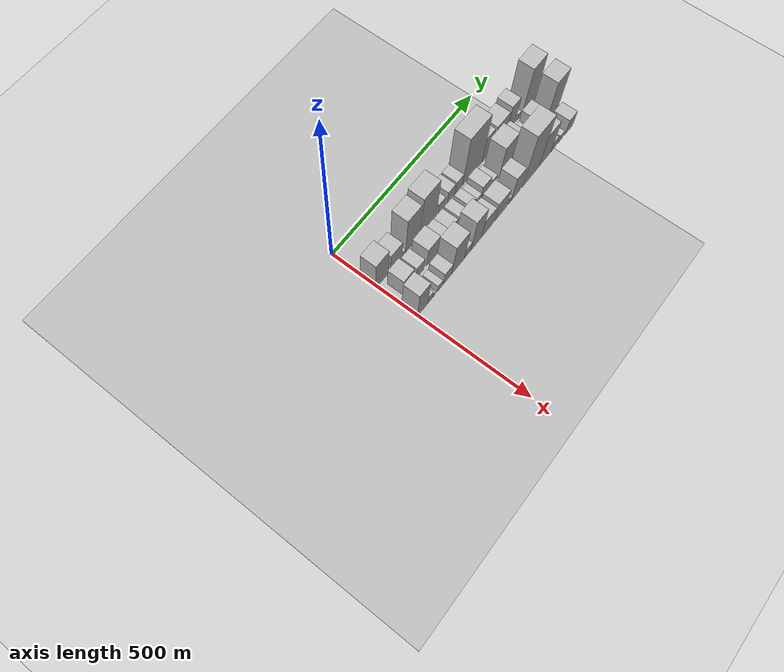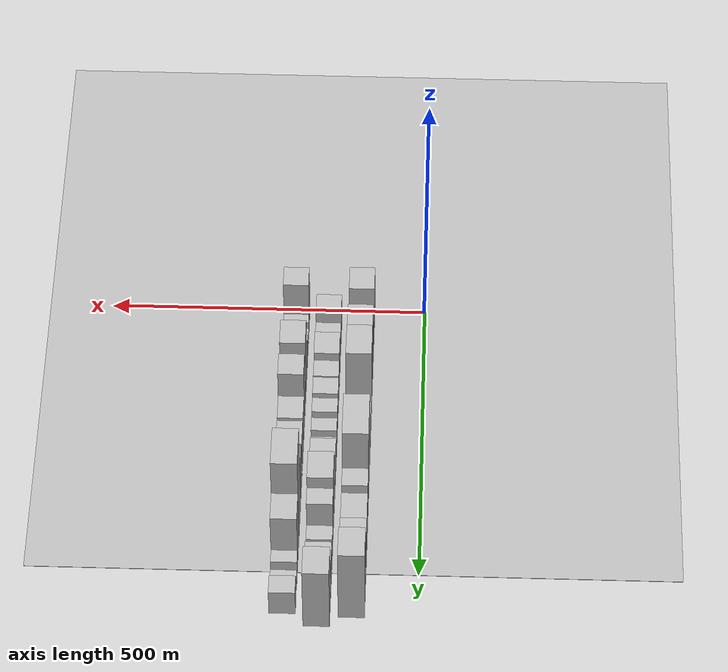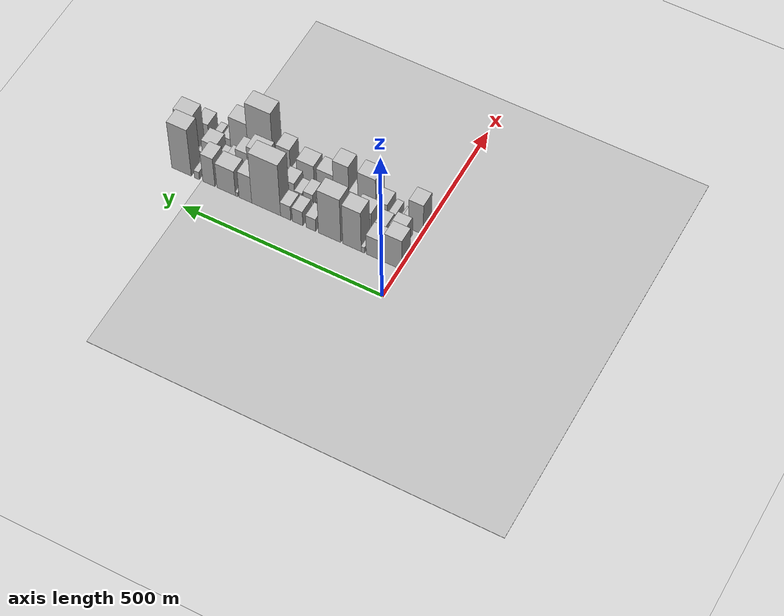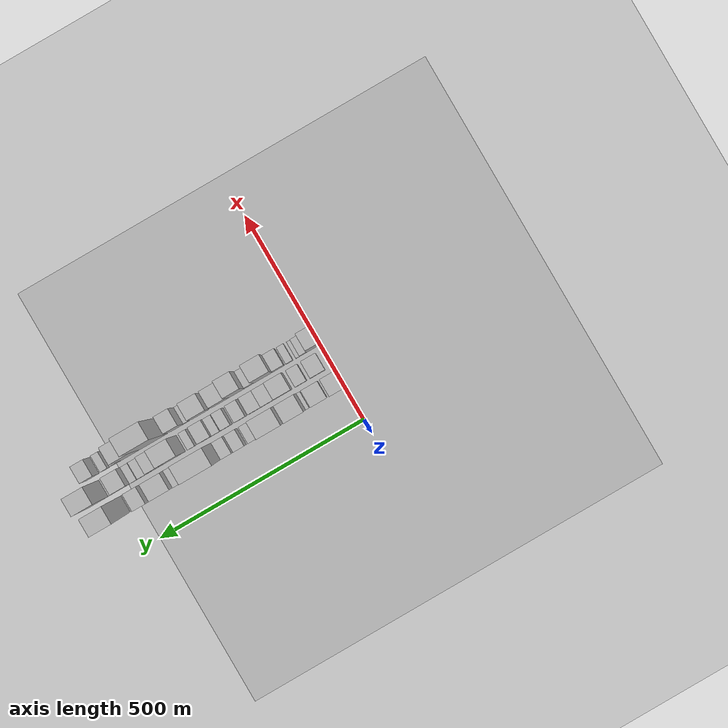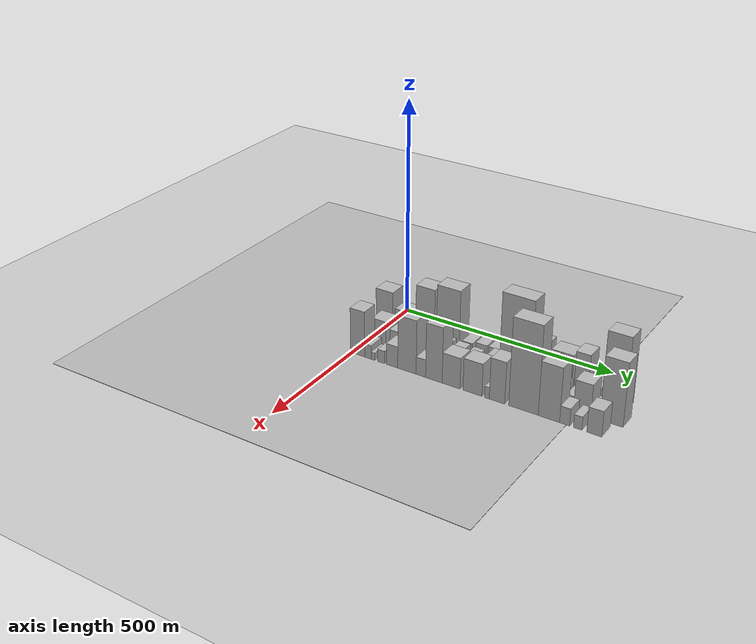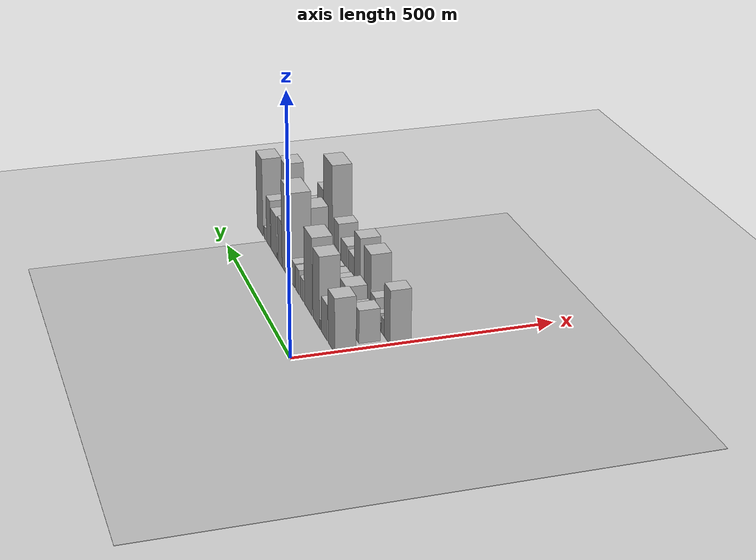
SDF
<sdf version="1.6">
 <world name="default">
  <include><name>ground_plane_1</name><uri>model://HANNAS_ground_plane</uri></include>
  <include>
   <name>ground_plane_2</name>
   <uri>model://HANNAS_ground_plane</uri>
   <pose>100 0 0  0 0 0</pose>
  </include>
  <model name="building_19">
   <static>1</static>
   <pose>100.0000 15.9065 0 0.000000 0.000000 0.000000</pose>
   <link name="link">
    <pose>0 0 54.00 0 0 0</pose>
    <collision name="collision"><geometry><box><size>40.0000 42.9172 108.0000</size></box></geometry></collision>
    <visual name="visual">
     <cast_shadows>0</cast_shadows>
     <geometry><box><size>40.0000 42.9172 108.0000</size></box></geometry>
     <material>
      <script>
       <uri>model://HANNAS_wall/materials/scripts</uri>
       <uri>model://HANNAS_wall/materials/textures</uri>
       <name>vrc/HANNAS_wall</name>
      </script>
     </material>
    </visual>
   </link>
  </model>
  <model name="building_20">
   <static>1</static>
   <pose>100.0000 63.1172 0 0.000000 0.000000 0.000000</pose>
   <link name="link">
    <pose>0 0 36.00 0 0 0</pose>
    <collision name="collision"><geometry><box><size>40.0000 39.5042 72.0000</size></box></geometry></collision>
    <visual name="visual">
     <cast_shadows>0</cast_shadows>
     <geometry><box><size>40.0000 39.5042 72.0000</size></box></geometry>
     <material>
      <script>
       <uri>model://HANNAS_wall/materials/scripts</uri>
       <uri>model://HANNAS_wall/materials/textures</uri>
       <name>vrc/HANNAS_wall</name>
      </script>
     </material>
    </visual>
   </link>
  </model>
  <model name="building_21">
   <static>1</static>
   <pose>100.0000 91.1646 0 0.000000 0.000000 0.000000</pose>
   <link name="link">
    <pose>0 0 10.50 0 0 0</pose>
    <collision name="collision"><geometry><box><size>40.0000 8.5904 21.0000</size></box></geometry></collision>
    <visual name="visual">
     <cast_shadows>0</cast_shadows>
     <geometry><box><size>40.0000 8.5904 21.0000</size></box></geometry>
     <material>
      <script>
       <uri>model://HANNAS_wall/materials/scripts</uri>
       <uri>model://HANNAS_wall/materials/textures</uri>
       <name>vrc/HANNAS_wall</name>
      </script>
     </material>
    </visual>
   </link>
  </model>
  <model name="building_22">
   <static>1</static>
   <pose>100.0000 118.4998 0 0.000000 0.000000 0.000000</pose>
   <link name="link">
    <pose>0 0 72.00 0 0 0</pose>
    <collision name="collision"><geometry><box><size>40.0000 46.0801 144.0000</size></box></geometry></collision>
    <visual name="visual">
     <cast_shadows>0</cast_shadows>
     <geometry><box><size>40.0000 46.0801 144.0000</size></box></geometry>
     <material>
      <script>
       <uri>model://HANNAS_wall/materials/scripts</uri>
       <uri>model://HANNAS_wall/materials/textures</uri>
       <name>vrc/HANNAS_wall</name>
      </script>
     </material>
    </visual>
   </link>
  </model>
  <model name="building_23">
   <static>1</static>
   <pose>100.0000 174.3780 0 0.000000 0.000000 0.000000</pose>
   <link name="link">
    <pose>0 0 79.50 0 0 0</pose>
    <collision name="collision"><geometry><box><size>40.0000 55.6762 159.0000</size></box></geometry></collision>
    <visual name="visual">
     <cast_shadows>0</cast_shadows>
     <geometry><box><size>40.0000 55.6762 159.0000</size></box></geometry>
     <material>
      <script>
       <uri>model://HANNAS_wall/materials/scripts</uri>
       <uri>model://HANNAS_wall/materials/textures</uri>
       <name>vrc/HANNAS_wall</name>
      </script>
     </material>
    </visual>
   </link>
  </model>
  <model name="building_24">
   <static>1</static>
   <pose>100.0000 221.4024 0 0.000000 0.000000 0.000000</pose>
   <link name="link">
    <pose>0 0 22.50 0 0 0</pose>
    <collision name="collision"><geometry><box><size>40.0000 24.3726 45.0000</size></box></geometry></collision>
    <visual name="visual">
     <cast_shadows>0</cast_shadows>
     <geometry><box><size>40.0000 24.3726 45.0000</size></box></geometry>
     <material>
      <script>
       <uri>model://HANNAS_wall/materials/scripts</uri>
       <uri>model://HANNAS_wall/materials/textures</uri>
       <name>vrc/HANNAS_wall</name>
      </script>
     </material>
    </visual>
   </link>
  </model>
  <model name="building_25">
   <static>1</static>
   <pose>100.0000 254.8437 0 0.000000 0.000000 0.000000</pose>
   <link name="link">
    <pose>0 0 25.50 0 0 0</pose>
    <collision name="collision"><geometry><box><size>40.0000 26.5101 51.0000</size></box></geometry></collision>
    <visual name="visual">
     <cast_shadows>0</cast_shadows>
     <geometry><box><size>40.0000 26.5101 51.0000</size></box></geometry>
     <material>
      <script>
       <uri>model://HANNAS_wall/materials/scripts</uri>
       <uri>model://HANNAS_wall/materials/textures</uri>
       <name>vrc/HANNAS_wall</name>
      </script>
     </material>
    </visual>
   </link>
  </model>
  <model name="building_26">
   <static>1</static>
   <pose>100.0000 285.0551 0 0.000000 0.000000 0.000000</pose>
   <link name="link">
    <pose>0 0 25.50 0 0 0</pose>
    <collision name="collision"><geometry><box><size>40.0000 25.9128 51.0000</size></box></geometry></collision>
    <visual name="visual">
     <cast_shadows>0</cast_shadows>
     <geometry><box><size>40.0000 25.9128 51.0000</size></box></geometry>
     <material>
      <script>
       <uri>model://HANNAS_wall/materials/scripts</uri>
       <uri>model://HANNAS_wall/materials/textures</uri>
       <name>vrc/HANNAS_wall</name>
      </script>
     </material>
    </visual>
   </link>
  </model>
  <model name="building_27">
   <static>1</static>
   <pose>100.0000 334.7470 0 0.000000 0.000000 0.000000</pose>
   <link name="link">
    <pose>0 0 93.00 0 0 0</pose>
    <collision name="collision"><geometry><box><size>40.0000 73.4709 186.0000</size></box></geometry></collision>
    <visual name="visual">
     <cast_shadows>0</cast_shadows>
     <geometry><box><size>40.0000 73.4709 186.0000</size></box></geometry>
     <material>
      <script>
       <uri>model://HANNAS_wall/materials/scripts</uri>
       <uri>model://HANNAS_wall/materials/textures</uri>
       <name>vrc/HANNAS_wall</name>
      </script>
     </material>
    </visual>
   </link>
  </model>
  <model name="building_28">
   <static>1</static>
   <pose>100.0000 387.5578 0 0.000000 0.000000 0.000000</pose>
   <link name="link">
    <pose>0 0 48.00 0 0 0</pose>
    <collision name="collision"><geometry><box><size>40.0000 32.1508 96.0000</size></box></geometry></collision>
    <visual name="visual">
     <cast_shadows>0</cast_shadows>
     <geometry><box><size>40.0000 32.1508 96.0000</size></box></geometry>
     <material>
      <script>
       <uri>model://HANNAS_wall/materials/scripts</uri>
       <uri>model://HANNAS_wall/materials/textures</uri>
       <name>vrc/HANNAS_wall</name>
      </script>
     </material>
    </visual>
   </link>
  </model>
  <model name="building_29">
   <static>1</static>
   <pose>100.0000 409.8102 0 0.000000 0.000000 0.000000</pose>
   <link name="link">
    <pose>0 0 7.50 0 0 0</pose>
    <collision name="collision"><geometry><box><size>40.0000 6.3538 15.0000</size></box></geometry></collision>
    <visual name="visual">
     <cast_shadows>0</cast_shadows>
     <geometry><box><size>40.0000 6.3538 15.0000</size></box></geometry>
     <material>
      <script>
       <uri>model://HANNAS_wall/materials/scripts</uri>
       <uri>model://HANNAS_wall/materials/textures</uri>
       <name>vrc/HANNAS_wall</name>
      </script>
     </material>
    </visual>
   </link>
  </model>
  <model name="building_30">
   <static>1</static>
   <pose>100.0000 436.9131 0 0.000000 0.000000 0.000000</pose>
   <link name="link">
    <pose>0 0 45.00 0 0 0</pose>
    <collision name="collision"><geometry><box><size>40.0000 47.8520 90.0000</size></box></geometry></collision>
    <visual name="visual">
     <cast_shadows>0</cast_shadows>
     <geometry><box><size>40.0000 47.8520 90.0000</size></box></geometry>
     <material>
      <script>
       <uri>model://HANNAS_wall/materials/scripts</uri>
       <uri>model://HANNAS_wall/materials/textures</uri>
       <name>vrc/HANNAS_wall</name>
      </script>
     </material>
    </visual>
   </link>
  </model>
  <model name="building_31">
   <static>1</static>
   <pose>100.0000 481.4354 0 0.000000 0.000000 0.000000</pose>
   <link name="link">
    <pose>0 0 51.00 0 0 0</pose>
    <collision name="collision"><geometry><box><size>40.0000 31.1927 102.0000</size></box></geometry></collision>
    <visual name="visual">
     <cast_shadows>0</cast_shadows>
     <geometry><box><size>40.0000 31.1927 102.0000</size></box></geometry>
     <material>
      <script>
       <uri>model://HANNAS_wall/materials/scripts</uri>
       <uri>model://HANNAS_wall/materials/textures</uri>
       <name>vrc/HANNAS_wall</name>
      </script>
     </material>
    </visual>
   </link>
  </model>
  <model name="building_32">
   <static>1</static>
   <pose>100.0000 512.4188 0 0.000000 0.000000 0.000000</pose>
   <link name="link">
    <pose>0 0 13.50 0 0 0</pose>
    <collision name="collision"><geometry><box><size>40.0000 12.7741 27.0000</size></box></geometry></collision>
    <visual name="visual">
     <cast_shadows>0</cast_shadows>
     <geometry><box><size>40.0000 12.7741 27.0000</size></box></geometry>
     <material>
      <script>
       <uri>model://HANNAS_wall/materials/scripts</uri>
       <uri>model://HANNAS_wall/materials/textures</uri>
       <name>vrc/HANNAS_wall</name>
      </script>
     </material>
    </visual>
   </link>
  </model>
  <model name="building_33">
   <static>1</static>
   <pose>100.0000 552.2329 0 0.000000 0.000000 0.000000</pose>
   <link name="link">
    <pose>0 0 84.00 0 0 0</pose>
    <collision name="collision"><geometry><box><size>40.0000 50.8540 168.0000</size></box></geometry></collision>
    <visual name="visual">
     <cast_shadows>0</cast_shadows>
     <geometry><box><size>40.0000 50.8540 168.0000</size></box></geometry>
     <material>
      <script>
       <uri>model://HANNAS_wall/materials/scripts</uri>
       <uri>model://HANNAS_wall/materials/textures</uri>
       <name>vrc/HANNAS_wall</name>
      </script>
     </material>
    </visual>
   </link>
  </model>
  <model name="building_54">
   <static>1</static>
   <pose>152.0000 35.4075 0 0.000000 0.000000 0.000000</pose>
   <link name="link">
    <pose>0 0 33.00 0 0 0</pose>
    <collision name="collision"><geometry><box><size>40.0000 35.6717 66.0000</size></box></geometry></collision>
    <visual name="visual">
     <cast_shadows>0</cast_shadows>
     <geometry><box><size>40.0000 35.6717 66.0000</size></box></geometry>
     <material>
      <script>
       <uri>model://HANNAS_wall/materials/scripts</uri>
       <uri>model://HANNAS_wall/materials/textures</uri>
       <name>vrc/HANNAS_wall</name>
      </script>
     </material>
    </visual>
   </link>
  </model>
  <model name="building_55">
   <static>1</static>
   <pose>152.0000 76.0595 0 0.000000 0.000000 0.000000</pose>
   <link name="link">
    <pose>0 0 25.50 0 0 0</pose>
    <collision name="collision"><geometry><box><size>40.0000 27.6321 51.0000</size></box></geometry></collision>
    <visual name="visual">
     <cast_shadows>0</cast_shadows>
     <geometry><box><size>40.0000 27.6321 51.0000</size></box></geometry>
     <material>
      <script>
       <uri>model://HANNAS_wall/materials/scripts</uri>
       <uri>model://HANNAS_wall/materials/textures</uri>
       <name>vrc/HANNAS_wall</name>
      </script>
     </material>
    </visual>
   </link>
  </model>
  <model name="building_56">
   <static>1</static>
   <pose>152.0000 119.8671 0 0.000000 0.000000 0.000000</pose>
   <link name="link">
    <pose>0 0 37.50 0 0 0</pose>
    <collision name="collision"><geometry><box><size>40.0000 41.9832 75.0000</size></box></geometry></collision>
    <visual name="visual">
     <cast_shadows>0</cast_shadows>
     <geometry><box><size>40.0000 41.9832 75.0000</size></box></geometry>
     <material>
      <script>
       <uri>model://HANNAS_wall/materials/scripts</uri>
       <uri>model://HANNAS_wall/materials/textures</uri>
       <name>vrc/HANNAS_wall</name>
      </script>
     </material>
    </visual>
   </link>
  </model>
  <model name="building_57">
   <static>1</static>
   <pose>152.0000 156.3310 0 0.000000 0.000000 0.000000</pose>
   <link name="link">
    <pose>0 0 28.50 0 0 0</pose>
    <collision name="collision"><geometry><box><size>40.0000 30.9444 57.0000</size></box></geometry></collision>
    <visual name="visual">
     <cast_shadows>0</cast_shadows>
     <geometry><box><size>40.0000 30.9444 57.0000</size></box></geometry>
     <material>
      <script>
       <uri>model://HANNAS_wall/materials/scripts</uri>
       <uri>model://HANNAS_wall/materials/textures</uri>
       <name>vrc/HANNAS_wall</name>
      </script>
     </material>
    </visual>
   </link>
  </model>
  <model name="building_58">
   <static>1</static>
   <pose>152.0000 187.4528 0 0.000000 0.000000 0.000000</pose>
   <link name="link">
    <pose>0 0 27.00 0 0 0</pose>
    <collision name="collision"><geometry><box><size>40.0000 31.2992 54.0000</size></box></geometry></collision>
    <visual name="visual">
     <cast_shadows>0</cast_shadows>
     <geometry><box><size>40.0000 31.2992 54.0000</size></box></geometry>
     <material>
      <script>
       <uri>model://HANNAS_wall/materials/scripts</uri>
       <uri>model://HANNAS_wall/materials/textures</uri>
       <name>vrc/HANNAS_wall</name>
      </script>
     </material>
    </visual>
   </link>
  </model>
  <model name="building_59">
   <static>1</static>
   <pose>152.0000 222.5751 0 0.000000 0.000000 0.000000</pose>
   <link name="link">
    <pose>0 0 25.50 0 0 0</pose>
    <collision name="collision"><geometry><box><size>40.0000 26.9455 51.0000</size></box></geometry></collision>
    <visual name="visual">
     <cast_shadows>0</cast_shadows>
     <geometry><box><size>40.0000 26.9455 51.0000</size></box></geometry>
     <material>
      <script>
       <uri>model://HANNAS_wall/materials/scripts</uri>
       <uri>model://HANNAS_wall/materials/textures</uri>
       <name>vrc/HANNAS_wall</name>
      </script>
     </material>
    </visual>
   </link>
  </model>
  <model name="building_60">
   <static>1</static>
   <pose>152.0000 257.1411 0 0.000000 0.000000 0.000000</pose>
   <link name="link">
    <pose>0 0 24.00 0 0 0</pose>
    <collision name="collision"><geometry><box><size>40.0000 24.1863 48.0000</size></box></geometry></collision>
    <visual name="visual">
     <cast_shadows>0</cast_shadows>
     <geometry><box><size>40.0000 24.1863 48.0000</size></box></geometry>
     <material>
      <script>
       <uri>model://HANNAS_wall/materials/scripts</uri>
       <uri>model://HANNAS_wall/materials/textures</uri>
       <name>vrc/HANNAS_wall</name>
      </script>
     </material>
    </visual>
   </link>
  </model>
  <model name="building_61">
   <static>1</static>
   <pose>152.0000 281.9680 0 0.000000 0.000000 0.000000</pose>
   <link name="link">
    <pose>0 0 18.00 0 0 0</pose>
    <collision name="collision"><geometry><box><size>40.0000 19.4674 36.0000</size></box></geometry></collision>
    <visual name="visual">
     <cast_shadows>0</cast_shadows>
     <geometry><box><size>40.0000 19.4674 36.0000</size></box></geometry>
     <material>
      <script>
       <uri>model://HANNAS_wall/materials/scripts</uri>
       <uri>model://HANNAS_wall/materials/textures</uri>
       <name>vrc/HANNAS_wall</name>
      </script>
     </material>
    </visual>
   </link>
  </model>
  <model name="building_62">
   <static>1</static>
   <pose>152.0000 307.4061 0 0.000000 0.000000 0.000000</pose>
   <link name="link">
    <pose>0 0 30.00 0 0 0</pose>
    <collision name="collision"><geometry><box><size>40.0000 31.4088 60.0000</size></box></geometry></collision>
    <visual name="visual">
     <cast_shadows>0</cast_shadows>
     <geometry><box><size>40.0000 31.4088 60.0000</size></box></geometry>
     <material>
      <script>
       <uri>model://HANNAS_wall/materials/scripts</uri>
       <uri>model://HANNAS_wall/materials/textures</uri>
       <name>vrc/HANNAS_wall</name>
      </script>
     </material>
    </visual>
   </link>
  </model>
  <model name="building_63">
   <static>1</static>
   <pose>152.0000 341.8757 0 0.000000 0.000000 0.000000</pose>
   <link name="link">
    <pose>0 0 16.50 0 0 0</pose>
    <collision name="collision"><geometry><box><size>40.0000 17.5305 33.0000</size></box></geometry></collision>
    <visual name="visual">
     <cast_shadows>0</cast_shadows>
     <geometry><box><size>40.0000 17.5305 33.0000</size></box></geometry>
     <material>
      <script>
       <uri>model://HANNAS_wall/materials/scripts</uri>
       <uri>model://HANNAS_wall/materials/textures</uri>
       <name>vrc/HANNAS_wall</name>
      </script>
     </material>
    </visual>
   </link>
  </model>
  <model name="building_64">
   <static>1</static>
   <pose>152.0000 385.1507 0 0.000000 0.000000 0.000000</pose>
   <link name="link">
    <pose>0 0 61.50 0 0 0</pose>
    <collision name="collision"><geometry><box><size>40.0000 49.0194 123.0000</size></box></geometry></collision>
    <visual name="visual">
     <cast_shadows>0</cast_shadows>
     <geometry><box><size>40.0000 49.0194 123.0000</size></box></geometry>
     <material>
      <script>
       <uri>model://HANNAS_wall/materials/scripts</uri>
       <uri>model://HANNAS_wall/materials/textures</uri>
       <name>vrc/HANNAS_wall</name>
      </script>
     </material>
    </visual>
   </link>
  </model>
  <model name="building_65">
   <static>1</static>
   <pose>152.0000 424.3583 0 0.000000 0.000000 0.000000</pose>
   <link name="link">
    <pose>0 0 48.00 0 0 0</pose>
    <collision name="collision"><geometry><box><size>40.0000 29.3959 96.0000</size></box></geometry></collision>
    <visual name="visual">
     <cast_shadows>0</cast_shadows>
     <geometry><box><size>40.0000 29.3959 96.0000</size></box></geometry>
     <material>
      <script>
       <uri>model://HANNAS_wall/materials/scripts</uri>
       <uri>model://HANNAS_wall/materials/textures</uri>
       <name>vrc/HANNAS_wall</name>
      </script>
     </material>
    </visual>
   </link>
  </model>
  <model name="building_66">
   <static>1</static>
   <pose>152.0000 456.0876 0 0.000000 0.000000 0.000000</pose>
   <link name="link">
    <pose>0 0 22.50 0 0 0</pose>
    <collision name="collision"><geometry><box><size>40.0000 26.0627 45.0000</size></box></geometry></collision>
    <visual name="visual">
     <cast_shadows>0</cast_shadows>
     <geometry><box><size>40.0000 26.0627 45.0000</size></box></geometry>
     <material>
      <script>
       <uri>model://HANNAS_wall/materials/scripts</uri>
       <uri>model://HANNAS_wall/materials/textures</uri>
       <name>vrc/HANNAS_wall</name>
      </script>
     </material>
    </visual>
   </link>
  </model>
  <model name="building_67">
   <static>1</static>
   <pose>152.0000 481.7140 0 0.000000 0.000000 0.000000</pose>
   <link name="link">
    <pose>0 0 16.50 0 0 0</pose>
    <collision name="collision"><geometry><box><size>40.0000 17.1900 33.0000</size></box></geometry></collision>
    <visual name="visual">
     <cast_shadows>0</cast_shadows>
     <geometry><box><size>40.0000 17.1900 33.0000</size></box></geometry>
     <material>
      <script>
       <uri>model://HANNAS_wall/materials/scripts</uri>
       <uri>model://HANNAS_wall/materials/textures</uri>
       <name>vrc/HANNAS_wall</name>
      </script>
     </material>
    </visual>
   </link>
  </model>
  <model name="building_68">
   <static>1</static>
   <pose>152.0000 508.9699 0 0.000000 0.000000 0.000000</pose>
   <link name="link">
    <pose>0 0 36.00 0 0 0</pose>
    <collision name="collision"><geometry><box><size>40.0000 37.3218 72.0000</size></box></geometry></collision>
    <visual name="visual">
     <cast_shadows>0</cast_shadows>
     <geometry><box><size>40.0000 37.3218 72.0000</size></box></geometry>
     <material>
      <script>
       <uri>model://HANNAS_wall/materials/scripts</uri>
       <uri>model://HANNAS_wall/materials/textures</uri>
       <name>vrc/HANNAS_wall</name>
      </script>
     </material>
    </visual>
   </link>
  </model>
  <model name="building_69">
   <static>1</static>
   <pose>152.0000 533.5448 0 0.000000 0.000000 0.000000</pose>
   <link name="link">
    <pose>0 0 13.50 0 0 0</pose>
    <collision name="collision"><geometry><box><size>40.0000 11.8280 27.0000</size></box></geometry></collision>
    <visual name="visual">
     <cast_shadows>0</cast_shadows>
     <geometry><box><size>40.0000 11.8280 27.0000</size></box></geometry>
     <material>
      <script>
       <uri>model://HANNAS_wall/materials/scripts</uri>
       <uri>model://HANNAS_wall/materials/textures</uri>
       <name>vrc/HANNAS_wall</name>
      </script>
     </material>
    </visual>
   </link>
  </model>
  <model name="building_70">
   <static>1</static>
   <pose>152.0000 542.9801 0 0.000000 0.000000 0.000000</pose>
   <link name="link">
    <pose>0 0 7.50 0 0 0</pose>
    <collision name="collision"><geometry><box><size>40.0000 7.0425 15.0000</size></box></geometry></collision>
    <visual name="visual">
     <cast_shadows>0</cast_shadows>
     <geometry><box><size>40.0000 7.0425 15.0000</size></box></geometry>
     <material>
      <script>
       <uri>model://HANNAS_wall/materials/scripts</uri>
       <uri>model://HANNAS_wall/materials/textures</uri>
       <name>vrc/HANNAS_wall</name>
      </script>
     </material>
    </visual>
   </link>
  </model>
  <model name="building_71">
   <static>1</static>
   <pose>152.0000 570.5997 0 0.000000 0.000000 0.000000</pose>
   <link name="link">
    <pose>0 0 72.00 0 0 0</pose>
    <collision name="collision"><geometry><box><size>40.0000 48.1968 144.0000</size></box></geometry></collision>
    <visual name="visual">
     <cast_shadows>0</cast_shadows>
     <geometry><box><size>40.0000 48.1968 144.0000</size></box></geometry>
     <material>
      <script>
       <uri>model://HANNAS_wall/materials/scripts</uri>
       <uri>model://HANNAS_wall/materials/textures</uri>
       <name>vrc/HANNAS_wall</name>
      </script>
     </material>
    </visual>
   </link>
  </model>
  <model name="building_85">
   <static>1</static>
   <pose>204.0000 15.2352 0 0.000000 0.000000 0.000000</pose>
   <link name="link">
    <pose>0 0 54.00 0 0 0</pose>
    <collision name="collision"><geometry><box><size>40.0000 35.9328 108.0000</size></box></geometry></collision>
    <visual name="visual">
     <cast_shadows>0</cast_shadows>
     <geometry><box><size>40.0000 35.9328 108.0000</size></box></geometry>
     <material>
      <script>
       <uri>model://HANNAS_wall/materials/scripts</uri>
       <uri>model://HANNAS_wall/materials/textures</uri>
       <name>vrc/HANNAS_wall</name>
      </script>
     </material>
    </visual>
   </link>
  </model>
  <model name="building_86">
   <static>1</static>
   <pose>204.0000 41.6203 0 0.000000 0.000000 0.000000</pose>
   <link name="link">
    <pose>0 0 16.50 0 0 0</pose>
    <collision name="collision"><geometry><box><size>40.0000 16.8372 33.0000</size></box></geometry></collision>
    <visual name="visual">
     <cast_shadows>0</cast_shadows>
     <geometry><box><size>40.0000 16.8372 33.0000</size></box></geometry>
     <material>
      <script>
       <uri>model://HANNAS_wall/materials/scripts</uri>
       <uri>model://HANNAS_wall/materials/textures</uri>
       <name>vrc/HANNAS_wall</name>
      </script>
     </material>
    </visual>
   </link>
  </model>
  <model name="building_87">
   <static>1</static>
   <pose>204.0000 54.5278 0 0.000000 0.000000 0.000000</pose>
   <link name="link">
    <pose>0 0 9.00 0 0 0</pose>
    <collision name="collision"><geometry><box><size>40.0000 8.9780 18.0000</size></box></geometry></collision>
    <visual name="visual">
     <cast_shadows>0</cast_shadows>
     <geometry><box><size>40.0000 8.9780 18.0000</size></box></geometry>
     <material>
      <script>
       <uri>model://HANNAS_wall/materials/scripts</uri>
       <uri>model://HANNAS_wall/materials/textures</uri>
       <name>vrc/HANNAS_wall</name>
      </script>
     </material>
    </visual>
   </link>
  </model>
  <model name="building_88">
   <static>1</static>
   <pose>204.0000 74.6007 0 0.000000 0.000000 0.000000</pose>
   <link name="link">
    <pose>0 0 15.00 0 0 0</pose>
    <collision name="collision"><geometry><box><size>40.0000 17.1677 30.0000</size></box></geometry></collision>
    <visual name="visual">
     <cast_shadows>0</cast_shadows>
     <geometry><box><size>40.0000 17.1677 30.0000</size></box></geometry>
     <material>
      <script>
       <uri>model://HANNAS_wall/materials/scripts</uri>
       <uri>model://HANNAS_wall/materials/textures</uri>
       <name>vrc/HANNAS_wall</name>
      </script>
     </material>
    </visual>
   </link>
  </model>
  <model name="building_89">
   <static>1</static>
   <pose>204.0000 101.3782 0 0.000000 0.000000 0.000000</pose>
   <link name="link">
    <pose>0 0 25.50 0 0 0</pose>
    <collision name="collision"><geometry><box><size>40.0000 28.3873 51.0000</size></box></geometry></collision>
    <visual name="visual">
     <cast_shadows>0</cast_shadows>
     <geometry><box><size>40.0000 28.3873 51.0000</size></box></geometry>
     <material>
      <script>
       <uri>model://HANNAS_wall/materials/scripts</uri>
       <uri>model://HANNAS_wall/materials/textures</uri>
       <name>vrc/HANNAS_wall</name>
      </script>
     </material>
    </visual>
   </link>
  </model>
  <model name="building_90">
   <static>1</static>
   <pose>204.0000 138.0467 0 0.000000 0.000000 0.000000</pose>
   <link name="link">
    <pose>0 0 63.00 0 0 0</pose>
    <collision name="collision"><geometry><box><size>40.0000 44.9497 126.0000</size></box></geometry></collision>
    <visual name="visual">
     <cast_shadows>0</cast_shadows>
     <geometry><box><size>40.0000 44.9497 126.0000</size></box></geometry>
     <material>
      <script>
       <uri>model://HANNAS_wall/materials/scripts</uri>
       <uri>model://HANNAS_wall/materials/textures</uri>
       <name>vrc/HANNAS_wall</name>
      </script>
     </material>
    </visual>
   </link>
  </model>
  <model name="building_91">
   <static>1</static>
   <pose>204.0000 171.9271 0 0.000000 0.000000 0.000000</pose>
   <link name="link">
    <pose>0 0 21.00 0 0 0</pose>
    <collision name="collision"><geometry><box><size>40.0000 22.8110 42.0000</size></box></geometry></collision>
    <visual name="visual">
     <cast_shadows>0</cast_shadows>
     <geometry><box><size>40.0000 22.8110 42.0000</size></box></geometry>
     <material>
      <script>
       <uri>model://HANNAS_wall/materials/scripts</uri>
       <uri>model://HANNAS_wall/materials/textures</uri>
       <name>vrc/HANNAS_wall</name>
      </script>
     </material>
    </visual>
   </link>
  </model>
  <model name="building_92">
   <static>1</static>
   <pose>204.0000 202.9652 0 0.000000 0.000000 0.000000</pose>
   <link name="link">
    <pose>0 0 64.50 0 0 0</pose>
    <collision name="collision"><geometry><box><size>40.0000 39.2653 129.0000</size></box></geometry></collision>
    <visual name="visual">
     <cast_shadows>0</cast_shadows>
     <geometry><box><size>40.0000 39.2653 129.0000</size></box></geometry>
     <material>
      <script>
       <uri>model://HANNAS_wall/materials/scripts</uri>
       <uri>model://HANNAS_wall/materials/textures</uri>
       <name>vrc/HANNAS_wall</name>
      </script>
     </material>
    </visual>
   </link>
  </model>
  <model name="building_93">
   <static>1</static>
   <pose>204.0000 243.5092 0 0.000000 0.000000 0.000000</pose>
   <link name="link">
    <pose>0 0 36.00 0 0 0</pose>
    <collision name="collision"><geometry><box><size>40.0000 41.8228 72.0000</size></box></geometry></collision>
    <visual name="visual">
     <cast_shadows>0</cast_shadows>
     <geometry><box><size>40.0000 41.8228 72.0000</size></box></geometry>
     <material>
      <script>
       <uri>model://HANNAS_wall/materials/scripts</uri>
       <uri>model://HANNAS_wall/materials/textures</uri>
       <name>vrc/HANNAS_wall</name>
      </script>
     </material>
    </visual>
   </link>
  </model>
  <model name="building_94">
   <static>1</static>
   <pose>204.0000 293.0879 0 0.000000 0.000000 0.000000</pose>
   <link name="link">
    <pose>0 0 37.50 0 0 0</pose>
    <collision name="collision"><geometry><box><size>40.0000 43.3346 75.0000</size></box></geometry></collision>
    <visual name="visual">
     <cast_shadows>0</cast_shadows>
     <geometry><box><size>40.0000 43.3346 75.0000</size></box></geometry>
     <material>
      <script>
       <uri>model://HANNAS_wall/materials/scripts</uri>
       <uri>model://HANNAS_wall/materials/textures</uri>
       <name>vrc/HANNAS_wall</name>
      </script>
     </material>
    </visual>
   </link>
  </model>
  <model name="building_95">
   <static>1</static>
   <pose>204.0000 326.1555 0 0.000000 0.000000 0.000000</pose>
   <link name="link">
    <pose>0 0 13.50 0 0 0</pose>
    <collision name="collision"><geometry><box><size>40.0000 10.8006 27.0000</size></box></geometry></collision>
    <visual name="visual">
     <cast_shadows>0</cast_shadows>
     <geometry><box><size>40.0000 10.8006 27.0000</size></box></geometry>
     <material>
      <script>
       <uri>model://HANNAS_wall/materials/scripts</uri>
       <uri>model://HANNAS_wall/materials/textures</uri>
       <name>vrc/HANNAS_wall</name>
      </script>
     </material>
    </visual>
   </link>
  </model>
  <model name="building_96">
   <static>1</static>
   <pose>204.0000 348.7719 0 0.000000 0.000000 0.000000</pose>
   <link name="link">
    <pose>0 0 48.00 0 0 0</pose>
    <collision name="collision"><geometry><box><size>40.0000 34.4322 96.0000</size></box></geometry></collision>
    <visual name="visual">
     <cast_shadows>0</cast_shadows>
     <geometry><box><size>40.0000 34.4322 96.0000</size></box></geometry>
     <material>
      <script>
       <uri>model://HANNAS_wall/materials/scripts</uri>
       <uri>model://HANNAS_wall/materials/textures</uri>
       <name>vrc/HANNAS_wall</name>
      </script>
     </material>
    </visual>
   </link>
  </model>
  <model name="building_97">
   <static>1</static>
   <pose>204.0000 407.3665 0 0.000000 0.000000 0.000000</pose>
   <link name="link">
    <pose>0 0 100.50 0 0 0</pose>
    <collision name="collision"><geometry><box><size>40.0000 64.7571 201.0000</size></box></geometry></collision>
    <visual name="visual">
     <cast_shadows>0</cast_shadows>
     <geometry><box><size>40.0000 64.7571 201.0000</size></box></geometry>
     <material>
      <script>
       <uri>model://HANNAS_wall/materials/scripts</uri>
       <uri>model://HANNAS_wall/materials/textures</uri>
       <name>vrc/HANNAS_wall</name>
      </script>
     </material>
    </visual>
   </link>
  </model>
  <model name="building_98">
   <static>1</static>
   <pose>204.0000 462.6557 0 0.000000 0.000000 0.000000</pose>
   <link name="link">
    <pose>0 0 61.50 0 0 0</pose>
    <collision name="collision"><geometry><box><size>40.0000 45.8212 123.0000</size></box></geometry></collision>
    <visual name="visual">
     <cast_shadows>0</cast_shadows>
     <geometry><box><size>40.0000 45.8212 123.0000</size></box></geometry>
     <material>
      <script>
       <uri>model://HANNAS_wall/materials/scripts</uri>
       <uri>model://HANNAS_wall/materials/textures</uri>
       <name>vrc/HANNAS_wall</name>
      </script>
     </material>
    </visual>
   </link>
  </model>
  <model name="building_99">
   <static>1</static>
   <pose>204.0000 496.2481 0 0.000000 0.000000 0.000000</pose>
   <link name="link">
    <pose>0 0 19.50 0 0 0</pose>
    <collision name="collision"><geometry><box><size>40.0000 21.3638 39.0000</size></box></geometry></collision>
    <visual name="visual">
     <cast_shadows>0</cast_shadows>
     <geometry><box><size>40.0000 21.3638 39.0000</size></box></geometry>
     <material>
      <script>
       <uri>model://HANNAS_wall/materials/scripts</uri>
       <uri>model://HANNAS_wall/materials/textures</uri>
       <name>vrc/HANNAS_wall</name>
      </script>
     </material>
    </visual>
   </link>
  </model>
  <model name="building_100">
   <static>1</static>
   <pose>204.0000 523.6962 0 0.000000 0.000000 0.000000</pose>
   <link name="link">
    <pose>0 0 15.00 0 0 0</pose>
    <collision name="collision"><geometry><box><size>40.0000 17.5324 30.0000</size></box></geometry></collision>
    <visual name="visual">
     <cast_shadows>0</cast_shadows>
     <geometry><box><size>40.0000 17.5324 30.0000</size></box></geometry>
     <material>
      <script>
       <uri>model://HANNAS_wall/materials/scripts</uri>
       <uri>model://HANNAS_wall/materials/textures</uri>
       <name>vrc/HANNAS_wall</name>
      </script>
     </material>
    </visual>
   </link>
  </model>
  <model name="building_101">
   <static>1</static>
   <pose>204.0000 557.9509 0 0.000000 0.000000 0.000000</pose>
   <link name="link">
    <pose>0 0 28.50 0 0 0</pose>
    <collision name="collision"><geometry><box><size>40.0000 30.9769 57.0000</size></box></geometry></collision>
    <visual name="visual">
     <cast_shadows>0</cast_shadows>
     <geometry><box><size>40.0000 30.9769 57.0000</size></box></geometry>
     <material>
      <script>
       <uri>model://HANNAS_wall/materials/scripts</uri>
       <uri>model://HANNAS_wall/materials/textures</uri>
       <name>vrc/HANNAS_wall</name>
      </script>
     </material>
    </visual>
   </link>
  </model>
 </world>
</sdf>
